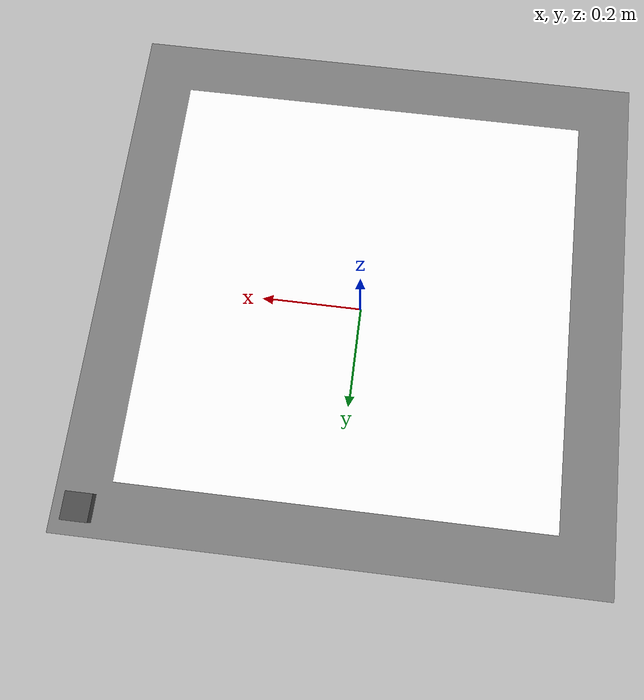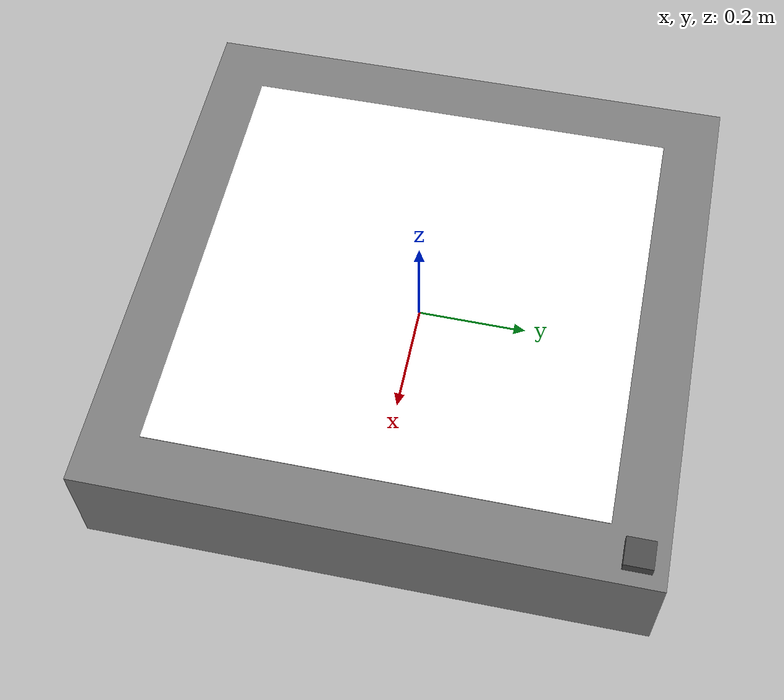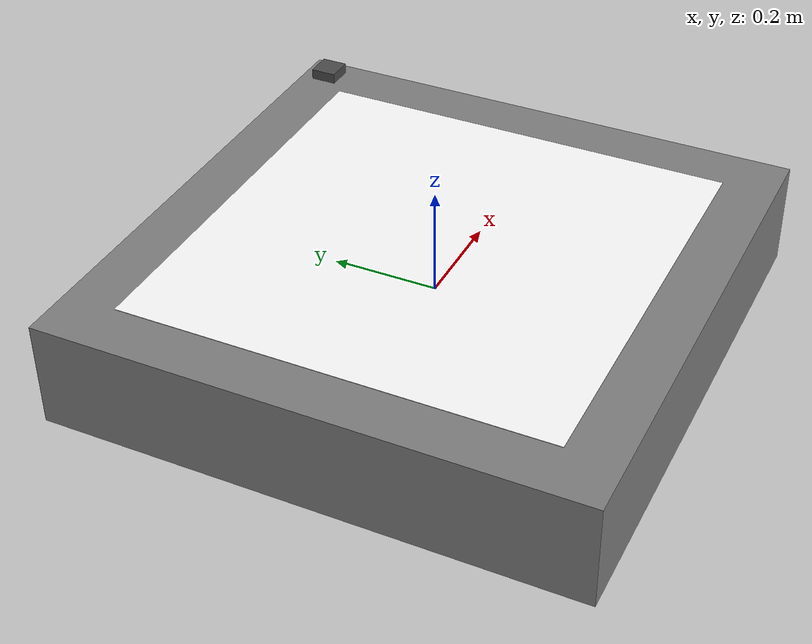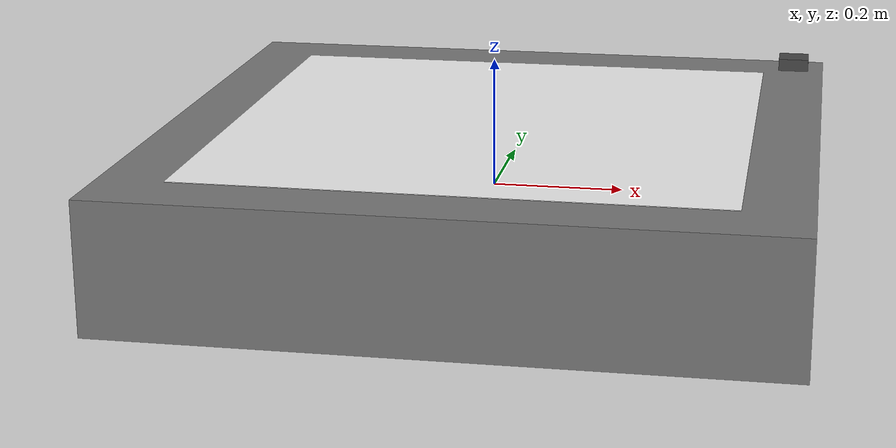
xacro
<?xml version="1.0"?>
<robot name="platform" xmlns:xacro="http://www.ros.org/wiki/xacro">
  <!-- Include the URDF and Gazebo files -->
  <xacro:include filename="$(find quadrotor_description)/models/platform/platform.urdf.xacro" />
  <xacro:include filename="$(find quadrotor_description)/models/platform/platform.gazebo" />
</robot>

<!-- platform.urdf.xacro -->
<robot name="platform" xmlns:xacro="http://www.ros.org/wiki/xacro">
  <xacro:property name="pi" value="3.1415926535897931" />

  <!-- Platform dimensions -->
  <xacro:property name="platform_length" value="1.0" />
  <xacro:property name="platform_width" value="1.0" />
  <xacro:property name="platform_height" value="0.2" />
  <xacro:property name="marker_size" value="0.8" />

  <!-- Base link -->
  <link name="base_link">
    <inertial>
      <origin xyz="0 0 0" rpy="0 0 0"/>
      <mass value="20.0"/>
      <inertia ixx="1.67" ixy="0.0" ixz="0.0" iyy="1.67" iyz="0.0" izz="3.33"/>
    </inertial>
    <visual>
      <origin xyz="0 0 0" rpy="0 0 0"/>
      <geometry>
        <box size="${platform_length} ${platform_width} ${platform_height}"/>
      </geometry>
      <material name="platform_grey">
        <color rgba="0.5 0.5 0.5 1"/>
      </material>
    </visual>
    <collision>
      <origin xyz="0 0 0" rpy="0 0 0"/>
      <geometry>
        <box size="${platform_length} ${platform_width} ${platform_height}"/>
      </geometry>
    </collision>
  </link>

  <!-- ArUco marker on top surface -->
  <link name="marker_link">
    <visual>
      <origin xyz="0 0 0.001" rpy="0 0 ${pi/2}"/>
      <geometry>
        <box size="${marker_size} ${marker_size} 0.001"/>
      </geometry>
      <material name="marker_material">
        <color rgba="1 1 1 1"/>
      </material>
    </visual>
  </link>

  <joint name="marker_joint" type="fixed">
    <parent link="base_link"/>
    <child link="marker_link"/>
    <origin xyz="0 0 ${platform_height/2}" rpy="0 0 0"/>
  </joint>

  <!-- GPS link -->
  <link name="gps_link">
    <inertial>
      <origin xyz="0 0 0" rpy="0 0 0"/>
      <mass value="0.1"/>
      <inertia ixx="0.001" ixy="0.0" ixz="0.0" iyy="0.001" iyz="0.0" izz="0.001"/>
    </inertial>
    <visual>
      <origin xyz="0 0 0" rpy="0 0 0"/>
      <geometry>
        <box size="0.05 0.05 0.02"/>
      </geometry>
      <material name="gps_grey">
        <color rgba="0.3 0.3 0.3 1"/>
      </material>
    </visual>
  </link>

  <joint name="gps_joint" type="fixed">
    <parent link="base_link"/>
    <child link="gps_link"/>
    <origin xyz="0.45 0.45 ${platform_height/2 + 0.01}" rpy="0 0 0"/>
  </joint>

</robot>
